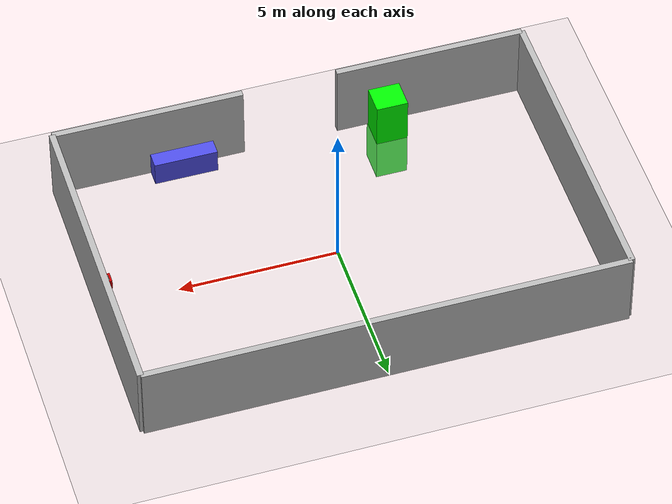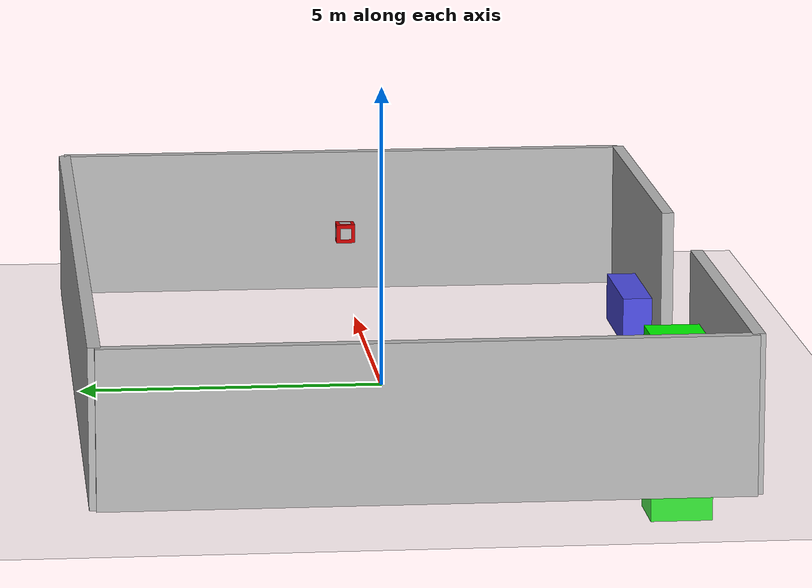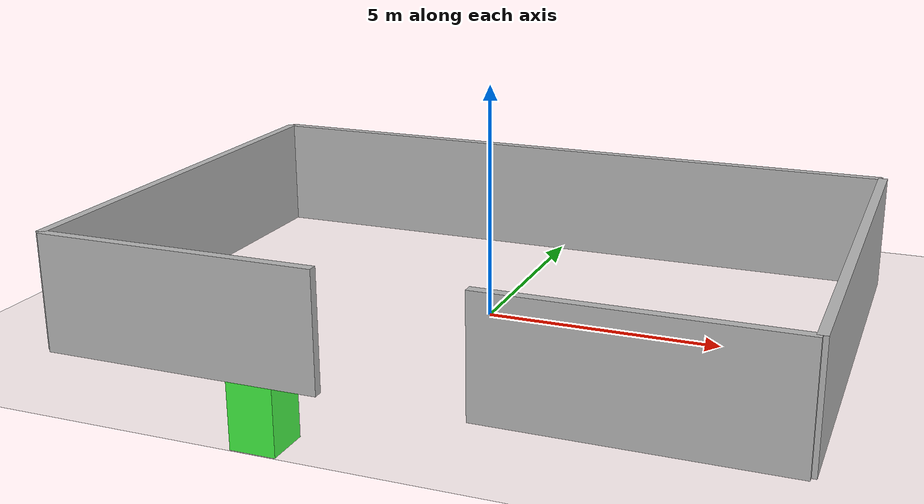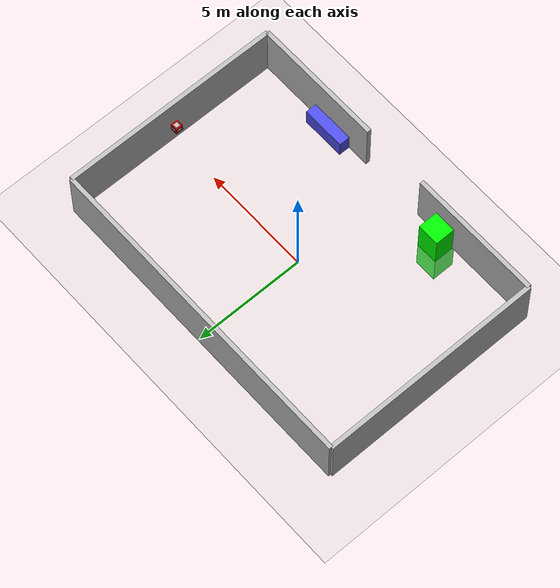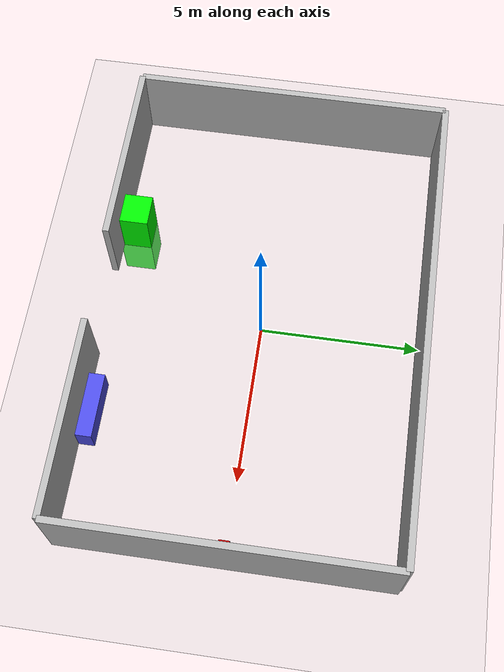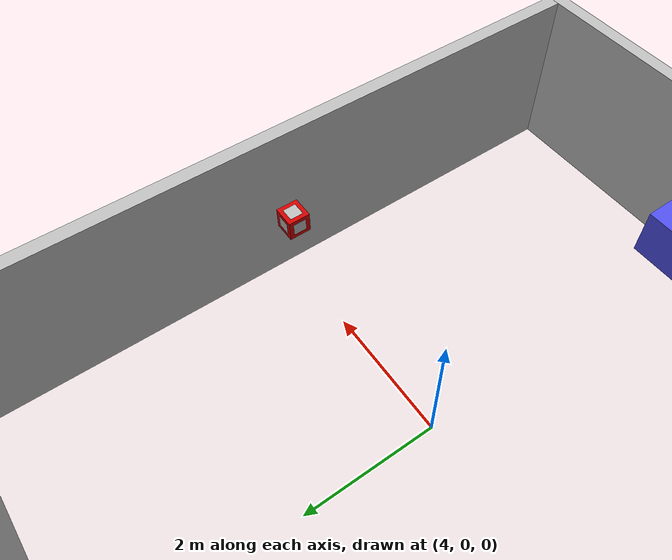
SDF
<sdf version="1.7">
 <world name="my_shop_rotated">
  <scene><background>0.2 0.2 0.2 1</background><grid>true</grid></scene>
  <plugin name="gazebo_ros_state" filename="libgazebo_ros_state.so">
   <update_rate>10.0</update_rate>
   <publish_model_states>true</publish_model_states>
  </plugin>
  <include><uri>model://sun</uri></include>
  <include><uri>model://ground_plane</uri></include>
  <model name="green_rectangle">
   <static>true</static>
   <pose>-3 -4.5 0 0 0 1.57</pose>
   <link name="link">
    <visual name="visual">
     <geometry><box><size>1 1 3</size></box></geometry>
     <material>
      <ambient>0 1 0 1</ambient>
      <diffuse>0 1 0 1</diffuse>
      <specular>0.1 0.1 0.1 1</specular>
      <emissive>0 0 0 0</emissive>
     </material>
    </visual>
    <collision name="collision"><geometry><box><size>1 1 3</size></box></geometry></collision>
   </link>
  </model>
  <model name="walls">
   <static>true</static>
   <link name="link">
    <collision name="wall_north">
     <pose>-7.5 0 1.25 0 0 1.57</pose>
     <geometry><box><size>10 0.2 2.5</size></box></geometry>
    </collision>
    <visual name="visual_north">
     <pose>-7.5 0 1.25 0 0 1.57</pose>
     <geometry><box><size>10 0.2 2.5</size></box></geometry>
    </visual>
    <collision name="wall_south">
     <pose>7.5 0 1.25 0 0 1.57</pose>
     <geometry><box><size>10 0.2 2.5</size></box></geometry>
    </collision>
    <visual name="visual_south">
     <pose>7.5 0 1.25 0 0 1.57</pose>
     <geometry><box><size>10 0.2 2.5</size></box></geometry>
    </visual>
    <collision name="wall_east">
     <pose>0 5 1.25 0 0 1.57</pose>
     <geometry><box><size>0.2 15 2.5</size></box></geometry>
    </collision>
    <visual name="visual_east">
     <pose>0 5 1.25 0 0 1.57</pose>
     <geometry><box><size>0.2 15 2.5</size></box></geometry>
    </visual>
    <collision name="wall_west_1">
     <pose>-4.5 -5 1.25 0 0 1.57</pose>
     <geometry><box><size>0.2 6 2.5</size></box></geometry>
    </collision>
    <visual name="visual_west_1">
     <pose>-4.5 -5 1.25 0 0 1.57</pose>
     <geometry><box><size>0.2 6 2.5</size></box></geometry>
    </visual>
    <collision name="wall_west_2">
     <pose>4.5 -5 1.25 0 0 1.57</pose>
     <geometry><box><size>0.2 6 2.5</size></box></geometry>
    </collision>
    <visual name="visual_west_2">
     <pose>4.5 -5 1.25 0 0 1.57</pose>
     <geometry><box><size>0.2 6 2.5</size></box></geometry>
    </visual>
   </link>
  </model>
  <include>
   <name>cash_desk_main</name>
   <uri>model://cash_desk</uri>
   <pose>3.5 -4.7 0 0 0 3.14</pose>
   <scale>11 11 11</scale>
  </include>
  <include>
   <name>red_box_baseball_bat</name>
   <uri>model://red_box_baseball_bat</uri>
   <pose>7.228297 -0.022547 0.896645 0 0 0</pose>
  </include>
 </world>
</sdf>

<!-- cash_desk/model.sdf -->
<!-- ~/TiagoShopAssistant/src/tiago/tiago/models/cash_desk.sdf -->
<sdf version='1.7'>
  <model name='cash_desk'>
    <static>true</static>
    <link name='link'>
      <pose>0 0 0.4 0 0 0</pose>
      <visual name='visual'>
        <geometry><box><size>2.0 0.6 0.8</size></box></geometry>
        <material><ambient>0.2 0.2 0.8 1</ambient><diffuse>0.3 0.3 0.9 1</diffuse></material>
      </visual>
      <collision name='collision'>
        <geometry><box><size>2.0 0.6 0.8</size></box></geometry>
      </collision>
    </link>
  </model>
</sdf>

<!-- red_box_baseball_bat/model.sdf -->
<sdf version='1.7'>
  <model name='red_box_baseball_bat'>
    <static>true</static>
    <link name='link'>
      <pose>0 0 0.165 0 0 0</pose>
      <visual name='box_visual'>
        <geometry>
          <box><size>0.33 0.33 0.33</size></box>
        </geometry>
        <material>
          <ambient>0.8 0.0 0.0 1</ambient>
          <diffuse>0.8 0.0 0.0 1</diffuse>
          <specular>0.1 0.1 0.1 1</specular>
          <emissive>0 0 0 0</emissive>
        </material>
      </visual>
      <collision name='collision'>
        <geometry>
          <box><size>0.33 0.33 0.33</size></box>
        </geometry>
      </collision>
    </link>

    <!-- AprilTag on top face -->
    <link name="apriltag_top">
      <pose>0 0 0.331 0 0 0</pose>
      <visual name="tag_visual_top">
        <geometry>
          <box><size>0.2 0.2 0.001</size></box>
        </geometry>
        <material>
          <script>
            <uri>model://red_box_baseball_bat/materials/scripts</uri>
            <name>Tag8</name>
          </script>
        </material>
      </visual>
    </link>

    <!-- AprilTag on bottom face -->
    <link name="apriltag_bottom">
      <pose>0 0 -0.001 0 0 0</pose>
      <visual name="tag_visual_bottom">
        <geometry>
          <box><size>0.2 0.2 0.001</size></box>
        </geometry>
        <material>
          <script>
            <uri>model://red_box_baseball_bat/materials/scripts</uri>
            <name>Tag8</name>
          </script>
        </material>
      </visual>
    </link>

    <!-- AprilTag on front face -->
    <link name="apriltag_front">
      <pose>0 0.166 0.165 1.5708 0 0</pose>
      <visual name="tag_visual_front">
        <geometry>
          <box><size>0.2 0.2 0.001</size></box>
        </geometry>
        <material>
          <script>
            <uri>model://red_box_baseball_bat/materials/scripts</uri>
            <name>Tag8</name>
          </script>
        </material>
      </visual>
    </link>

    <!-- AprilTag on back face -->
    <link name="apriltag_back">
      <pose>0 -0.166 0.165 -1.5708 0 0</pose>
      <visual name="tag_visual_back">
        <geometry>
          <box><size>0.2 0.2 0.001</size></box>
        </geometry>
        <material>
          <script>
            <uri>model://red_box_baseball_bat/materials/scripts</uri>
            <name>Tag8</name>
          </script>
        </material>
      </visual>
    </link>

    <!-- AprilTag on right face -->
    <link name="apriltag_right">
      <pose>0.166 0 0.165 0 1.5708 0</pose>
      <visual name="tag_visual_right">
        <geometry>
          <box><size>0.2 0.2 0.001</size></box>
        </geometry>
        <material>
          <script>
            <uri>model://red_box_baseball_bat/materials/scripts</uri>
            <name>Tag8</name>
          </script>
        </material>
      </visual>
    </link>

    <!-- AprilTag on left face -->
    <link name="apriltag_left">
      <pose>-0.166 0 0.165 0 -1.5708 0</pose>
      <visual name="tag_visual_left">
        <geometry>
          <box><size>0.2 0.2 0.001</size></box>
        </geometry>
        <material>
          <script>
            <uri>model://red_box_baseball_bat/materials/scripts</uri>
            <name>Tag8</name>
          </script>
        </material>
      </visual>
    </link>

    <!-- Joints to attach all AprilTags -->
    <joint name="tag_joint_top" type="fixed">
      <parent>link</parent>
      <child>apriltag_top</child>
    </joint>
    <joint name="tag_joint_bottom" type="fixed">
      <parent>link</parent>
      <child>apriltag_bottom</child>
    </joint>
    <joint name="tag_joint_front" type="fixed">
      <parent>link</parent>
      <child>apriltag_front</child>
    </joint>
    <joint name="tag_joint_back" type="fixed">
      <parent>link</parent>
      <child>apriltag_back</child>
    </joint>
    <joint name="tag_joint_right" type="fixed">
      <parent>link</parent>
      <child>apriltag_right</child>
    </joint>
    <joint name="tag_joint_left" type="fixed">
      <parent>link</parent>
      <child>apriltag_left</child>
    </joint>
  </model>
</sdf>
